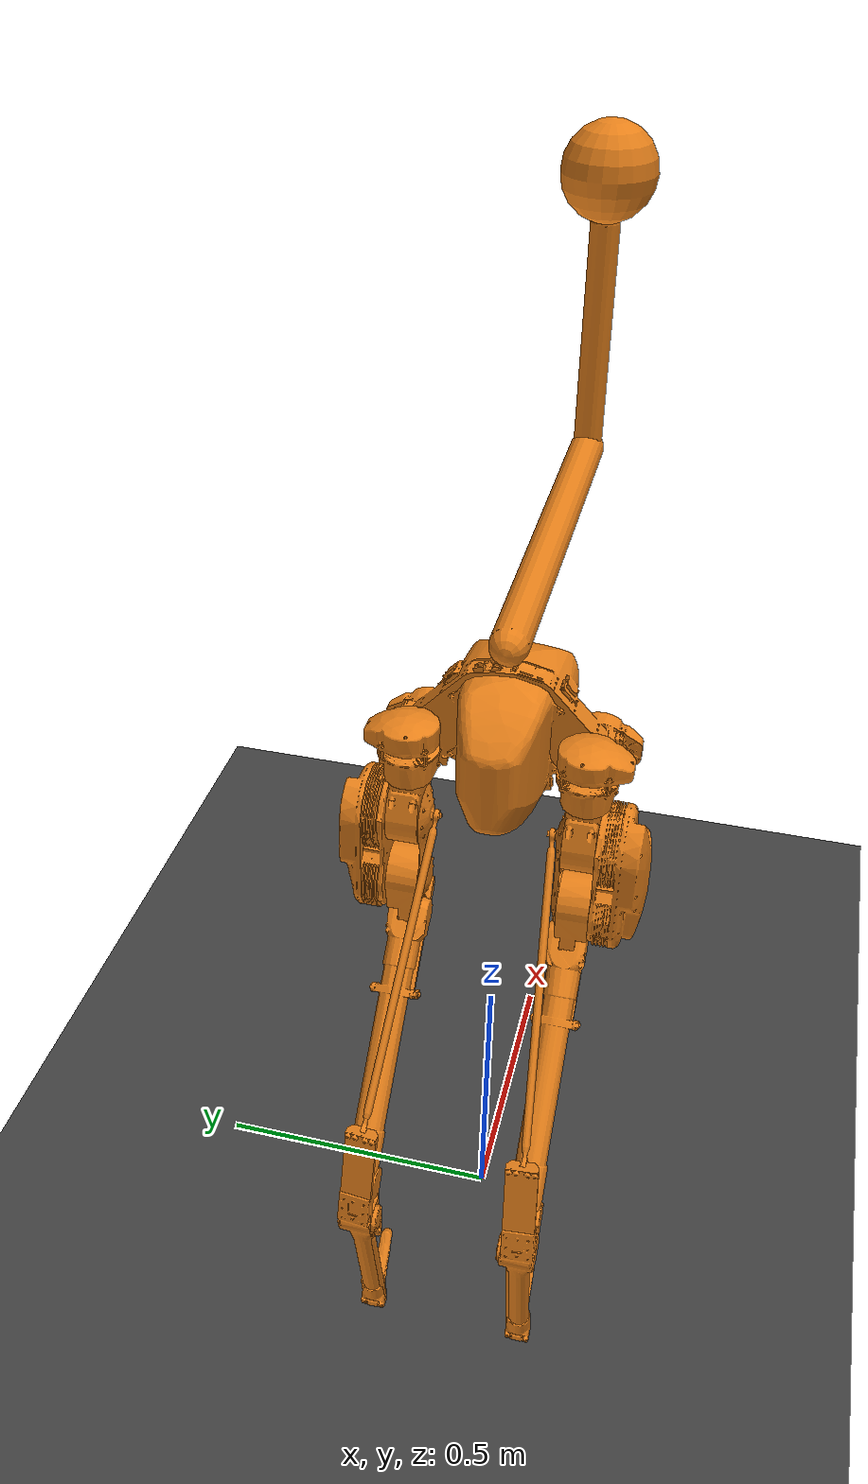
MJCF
<!-- Cassie simulation model developed by the Dynamic Robotics Laboratory -->
<mujoco model='cassie'>
  <compiler inertiafromgeom='auto' angle='degree' eulerseq='zyx' meshdir='cassie-stl-meshes'/>
  <size nuser_actuator='1' nuser_sensor='1' nuser_geom='1'/>
  <option timestep='0.0005' iterations='50' solver='PGS' gravity='0 0 -9.81'/>
  <!-- Timestep is set to 0.0005 because our controller runs at 2 kHz -->
  <!-- Larger values still have stable dynamics -->

  <visual>
    <quality shadowsize='4096'/>
    <map znear='0.05'/>
  </visual>

  <default>
    <joint limited='true'/>
    <motor ctrllimited='true'/>
    <geom contype='0' conaffinity='0' condim='1' solref='0.005 1'/>
    <equality solref='0.005 1'/>
    <default class='cassie'>
      <geom material='cassie'/>
    </default>
    <default class='collision'>
      <!-- User parameter for geoms is used to identify collision types -->
      <geom material='collision' contype='1' user='2'/>
      <default class='collision-left'>
        <geom contype='2' conaffinity='4'/>
      </default>
      <default class='collision-right'>
        <geom contype='4' conaffinity='2'/>
      </default>
    </default>
    <default class='obstacle'>
      <geom material='obstacle' condim='3' contype='8' conaffinity='15' user='1'/>
    </default>
  </default>

  <asset>
    <texture type='skybox' builtin='gradient' width='128' height='128' rgb1='0.4 0.6 0.8' rgb2='0 0 0'/>
    <texture name='plane' type='2d' builtin='checker' rgb1='0.2 0.2 0.2' rgb2='0.3 0.3 0.3' width='512' height='512'/>
    <material name='plane' reflectance='0.0' texture='plane' texrepeat='1 1' texuniform='true'/>
    <material name='cassie'    rgba='0.9 0.5 0.1 1'/>
    <material name='collision' rgba='0.1 0.5 0.9 0'/>
    <material name='obstacle'  rgba='0.2 0.6 0.2 1'/>
    <mesh name='cassie-pelvis' file='pelvis.stl'/>
    <mesh name='left-hip-roll'     file='hip-roll.stl'/>
    <mesh name='left-hip-yaw'      file='hip-yaw.stl'/>
    <mesh name='left-hip-pitch'    file='hip-pitch.stl'/>
    <mesh name='left-achilles-rod' file='achilles-rod.stl'/>
    <mesh name='left-knee'         file='knee.stl'/>
    <mesh name='left-knee-spring'  file='knee-spring.stl'/>
    <mesh name='left-shin'         file='shin.stl'/>
    <mesh name='left-tarsus'       file='tarsus.stl'/>
    <mesh name='left-heel-spring'  file='heel-spring.stl'/>
    <mesh name='left-foot-crank'   file='foot-crank.stl'/>
    <mesh name='left-plantar-rod'  file='plantar-rod.stl'/>
    <mesh name='left-foot'         file='foot.stl'/>
    <mesh name='right-hip-roll'     scale='1 -1 1' file='hip-roll.stl'/>
    <mesh name='right-hip-yaw'      scale='1 -1 1' file='hip-yaw.stl'/>
    <mesh name='right-hip-pitch'    scale='1 1 -1' file='hip-pitch.stl'/>
    <mesh name='right-achilles-rod' scale='1 1 -1' file='achilles-rod.stl'/>
    <mesh name='right-knee'         scale='1 1 -1' file='knee.stl'/>
    <mesh name='right-knee-spring'  scale='1 1 -1' file='knee-spring.stl'/>
    <mesh name='right-shin'         scale='1 1 -1' file='shin.stl'/>
    <mesh name='right-tarsus'       scale='1 1 -1' file='tarsus.stl'/>
    <mesh name='right-heel-spring'  scale='1 1 -1' file='heel-spring.stl'/>
    <mesh name='right-foot-crank'   scale='1 1 -1' file='foot-crank.stl'/>
    <mesh name='right-plantar-rod'  scale='1 1 -1' file='plantar-rod.stl'/>
    <mesh name='right-foot'         scale='1 1 -1' file='foot.stl'/>
  </asset>

  <worldbody>
    <geom name='floor' pos='0.0 0 -0.01' size='100 5 .125' type='plane' material='plane' condim='3' conaffinity='15' priority="1"/>

    <light mode='trackcom' pos='0 0 5' dir='0 0 -1'/>
    <light directional='true' pos='0 0 3' dir='0 0 -1' diffuse='0.2 0.2 0.2' specular='0 0 0'/>

    <body name='cassie-pelvis' pos='0 0 1.01' childclass='cassie'>
      <camera name='track' pos='0 -3 1' zaxis='0 -1 0.5' mode='track'/>
      <inertial pos='0.05066 0.000346 0.02841' mass='10.33' fullinertia='0.085821 0.049222 0.08626 1.276e-05 -0.00016022 -0.000414'/>
      <joint type='slide' axis='1 0 0' limited='true' range='0 0.00001'/>
      <joint type='slide' axis='0 1 0' limited='true' range='0 0.00001'/>
      <joint type='slide' axis='0 0 1' limited='true' range='1.01 1.010001' ref='1.01'/>
      <joint type='ball' limited='true'/>
      <geom type='mesh' mesh='cassie-pelvis'/>
      <geom type='sphere' size='0.15' pos='0.02 0 0.02' class='collision'/>
      <site name='imu' size='0.01' pos='0.03155 0 -0.07996'/>
      <body name='left-hip-roll' pos='0.021 0.135 0' xyaxes='0 0 -1 0 1 0'>
        <inertial pos='-0.01793 0.0001 -0.04428' mass='1.82' fullinertia='0.003431 0.003793 0.002135 -6.65e-07 -0.00084 3.99e-06'/>
        <joint name='left-hip-roll' type='hinge' range='-15 22.5' damping='1' armature='0.038125'/>
        <geom type='mesh' mesh='left-hip-roll'/>
        <body name='left-hip-yaw' pos='0 0 -0.07' xyaxes='0 0 1 0 1 0'>
          <inertial pos='0 -1e-05 -0.034277' mass='1.171' fullinertia='0.002443 0.002803 0.000842 -4e-08 2.462e-07 -2.71e-08'/>
          <joint name='left-hip-yaw' type='hinge' range='-22.5 22.5' damping='1' armature='0.038125'/>
          <geom type='mesh' mesh='left-hip-yaw'/>
          <body name='left-hip-pitch' pos='0 0 -0.09' xyaxes='0 0 -1 1 0 0'>
            <inertial pos='0.05946 5e-05 -0.03581' mass='5.52' fullinertia='0.010898 0.029714 0.030257 -0.0002669 -5.721e-05 9.17e-06'/>
            <joint name='left-hip-pitch' type='hinge' range='-50 80' damping='1' armature='0.09344'/>
            <geom type='mesh' mesh='left-hip-pitch'/>
            <geom type='capsule' size='0.08' fromto='0 0 -0.04 0.12 0 -0.0355' class='collision'/>
            <body name='left-achilles-rod' pos='0 0 0.045' xyaxes='0.7922 -0.60599 -0.072096 0.60349 0.79547 -0.054922'>
              <inertial pos='0.24719 0 0' mass='0.1567' fullinertia='3.754e-06 0.004487 0.004488 -3.74e-08 -1.61e-08 0'/>
              <joint name='left-achilles-rod' type='ball' limited='false' damping='0.01'/>
              <geom type='mesh' mesh='left-achilles-rod'/>
            </body>
            <body name='left-knee' pos='0.12 0 0.0045' xyaxes='0.70711 -0.70711 0 0.70711 0.70711 0'>
              <inertial pos='0.023 0.03207 -0.002181' mass='0.7578' fullinertia='0.001376 0.0010335 0.0021637 -0.00039744 -4.085e-05 -5.374e-05'/>
              <joint name='left-knee' type='hinge' ref='-45' range='-164 -37' damping='1' armature='0.09344'/>
              <geom type='mesh' mesh='left-knee'/>
              <body name='left-knee-spring' pos='0.06068 0.08241 0'>
                <inertial pos='0.0836 0.0034 0' mass='0.186' fullinertia='5.215e-05 0.00041205 0.0003669 6.87e-06 0 0'/>
                <geom type='mesh' mesh='left-knee-spring'/>
              </body>
              <body name='left-shin' pos='0.06068 0.04741 0'>
                <inertial pos='0.18338 0.001169 0.0002123' mass='0.577' fullinertia='0.00035939 0.014728 0.014707 -0.00020981 2.266e-05 -1.2e-07'/>
                <joint name='left-shin' type='hinge' range='-20 20' stiffness='1500' damping='0.1'/>
                <geom type='mesh' mesh='left-shin'/>
                <geom type='capsule' size='0.04' fromto='0 0 0 0.43476 0.02 0' class='collision-left'/>
                <body name='left-tarsus' pos='0.43476 0.02 0' xyaxes='0.52992 0.84805 0 -0.84805 0.52992 0'>
                  <inertial pos='0.11046 -0.03058 -0.00131' mass='0.782' fullinertia='0.00039238 0.013595 0.013674 0.00023651 -4.987e-05 -4.82e-06'/>
                  <joint name='left-tarsus' type='hinge' ref='58' range='50 170' damping='0.1'/>
                  <geom type='mesh' mesh='left-tarsus'/>
                  <geom type='capsule' size='0.04' fromto='-0.01269 -0.03059 0.00092 0.408 -0.04 0' class='collision-left'/>
                  <body name='left-heel-spring' pos='-0.01269 -0.03059 0.00092' xyaxes='-0.91211 0.40829 0.036948 -0.40992 -0.90952 -0.068841'>
                    <inertial pos='0.081 0.0022 0' mass='0.126' fullinertia='2.959e-05 0.00022231 0.0002007 7.15e-06 -6e-07 1e-07'/>
                    <joint name='left-heel-spring' type='hinge' limited='false' stiffness='1250'/>
                    <geom type='mesh' mesh='left-heel-spring'/>
                  </body>
                  <body name='left-foot-crank' pos='0.058 -0.034 0.02275'>
                    <inertial pos='0.00493 2e-05 -0.00215' mass='0.1261' fullinertia='2.6941e-05 4.9621e-05 6.3362e-05 -2.1e-09 -3.9623e-06 -1.09e-08'/>
                    <joint name='left-foot-crank' type='hinge' range='-140 -30' damping='1'/>
                    <geom type='mesh' mesh='left-foot-crank'/>
                    <body name='left-plantar-rod' pos='0.055 0 -0.00791'>
                      <inertial pos='0.17792 0 0' mass='0.1186' fullinertia='2.779e-06 0.001774 0.001775 -2.34e-08 -8.1e-09 0'/>
                      <joint name='left-plantar-rod' type='hinge' limited='false'/>
                      <geom type='mesh' mesh='left-plantar-rod'/>
                    </body>
                  </body>
                  <body name='left-foot' pos='0.408 -0.04 0'>
                    <inertial pos='0.00474 0.02748 -0.00014' mass='0.1498' fullinertia='0.00017388 0.00016793 0.00033261 0.00011814 1.36e-06 -4e-07'/>
                    <joint name='left-foot' type='hinge' range='-140 -30' damping='1' armature='0.01225'/>
                    <geom type='mesh' mesh='left-foot'/>
                    <geom type='capsule' size='0.02' fromto='-0.052821 0.092622 0 0.069746 -0.010224 0' class='collision-left'/>
                  </body>
                </body>
              </body>
            </body>
          </body>
        </body>
      </body>
      <body name='right-hip-roll' pos='0.021 -0.135 0' xyaxes='0 0 -1 0 1 0'>
        <inertial pos='-0.01793 0.0001 -0.04428' mass='1.82' fullinertia='0.003431 0.003793 0.002135 6.65e-07 -0.00084 -3.99e-06'/>
        <joint name='right-hip-roll' type='hinge' range='-22.5 15' damping='1' armature='0.038125'/>
        <geom type='mesh' mesh='right-hip-roll'/>
        <body name='right-hip-yaw' pos='0 0 -0.07' xyaxes='0 0 1 0 1 0'>
          <inertial pos='0 1e-05 -0.034277' mass='1.171' fullinertia='0.002443 0.002803 0.000842 4e-08 2.462e-07 2.71e-08'/>
          <joint name='right-hip-yaw' type='hinge' range='-22.5 22.5' damping='1' armature='0.038125'/>
          <geom type='mesh' mesh='right-hip-yaw'/>
          <body name='right-hip-pitch' pos='0 0 -0.09' xyaxes='0 0 -1 1 0 0'>
            <inertial pos='0.05946 5e-05 0.03581' mass='5.52' fullinertia='0.010898 0.029714 0.030257 -0.0002669 5.721e-05 -9.17e-06'/>
            <joint name='right-hip-pitch' type='hinge' range='-50 80' damping='1' armature='0.09344'/>
            <geom type='mesh' mesh='right-hip-pitch'/>
            <geom type='capsule' size='0.08' fromto='0 0 0.04 0.12 0 0.0355' class='collision'/>
            <body name='right-achilles-rod' pos='0 0 -0.045' xyaxes='0.7922 -0.60599 0.072096 0.60349 0.79547 0.054922'>
              <inertial pos='0.24719 0 0' mass='0.1567' fullinertia='3.754e-06 0.004487 0.004488 -3.74e-08 1.61e-08 0'/>
              <joint name='right-achilles-rod' type='ball' limited='false' damping='0.01'/>
              <geom type='mesh' mesh='right-achilles-rod'/>
            </body>
            <body name='right-knee' pos='0.12 0 -0.0045' xyaxes='0.70711 -0.70711 0 0.70711 0.70711 0'>
              <inertial pos='0.023 0.03207 0.002181' mass='0.7578' fullinertia='0.001376 0.0010335 0.0021637 -0.00039744 4.085e-05 5.374e-05'/>
              <joint name='right-knee' type='hinge' ref='-45' range='-164 -37' damping='1' armature='0.09344'/>
              <geom type='mesh' mesh='right-knee'/>
              <body name='right-knee-spring' pos='0.06068 0.08241 0'>
                <inertial pos='0.0836 0.0034 0' mass='0.186' fullinertia='5.215e-05 0.00041205 0.0003669 6.87e-06 0 0'/>
                <geom type='mesh' mesh='right-knee-spring'/>
              </body>
              <body name='right-shin' pos='0.06068 0.04741 0'>
                <inertial pos='0.18338 0.001169 -0.0002123' mass='0.577' fullinertia='0.00035939 0.014728 0.014707 -0.00020981 -2.266e-05 1.2e-07'/>
                <joint name='right-shin' type='hinge' range='-20 20' stiffness='1500' damping='0.1'/>
                <geom type='mesh' mesh='right-shin'/>
                <geom type='capsule' size='0.04' fromto='0 0 0 0.43476 0.02 0' class='collision-right'/>
                <body name='right-tarsus' pos='0.43476 0.02 0' xyaxes='0.52992 0.84805 0 -0.84805 0.52992 0'>
                  <inertial pos='0.11046 -0.03058 0.00131' mass='0.782' fullinertia='0.00039238 0.013595 0.013674 0.00023651 4.987e-05 4.82e-06'/>
                  <joint name='right-tarsus' type='hinge' ref='58' range='50 170' damping='0.1'/>
                  <geom type='mesh' mesh='right-tarsus'/>
                  <geom type='capsule' size='0.04' fromto='-0.01269 -0.03059 -0.00092 0.408 -0.04 0' class='collision-right'/>
                  <body name='right-heel-spring' pos='-0.01269 -0.03059 -0.00092' xyaxes='-0.91211 0.40829 -0.036948 -0.40992 -0.90952 0.068841'>
                    <inertial pos='0.081 0.0022 0' mass='0.126' fullinertia='2.959e-05 0.00022231 0.0002007 7.15e-06 6e-07 -1e-07'/>
                    <joint name='right-heel-spring' type='hinge' limited='false' stiffness='1250'/>
                    <geom type='mesh' mesh='right-heel-spring'/>
                  </body>
                  <body name='right-foot-crank' pos='0.058 -0.034 -0.02275'>
                    <inertial pos='0.00493 2e-05 0.00215' mass='0.1261' fullinertia='2.6941e-05 4.9621e-05 6.3362e-05 -2.1e-09 3.9623e-06 1.09e-08'/>
                    <joint name='right-foot-crank' type='hinge' range='-140 -30' damping='1'/>
                    <geom type='mesh' mesh='right-foot-crank'/>
                    <body name='right-plantar-rod' pos='0.055 0 0.00791'>
                      <inertial pos='0.17792 0 0' mass='0.1186' fullinertia='2.779e-06 0.001774 0.001775 -2.34e-08 8.1e-09 0'/>
                      <joint name='right-plantar-rod' type='hinge' limited='false'/>
                      <geom type='mesh' mesh='right-plantar-rod'/>
                    </body>
                  </body>
                  <body name='right-foot' pos='0.408 -0.04 0'>
                    <inertial pos='0.00474 0.02748 0.00014' mass='0.1498' fullinertia='0.00017388 0.00016793 0.00033261 0.00011814 -1.36e-06 4e-07'/>
                    <joint name='right-foot' type='hinge' range='-140 -30' damping='1' armature='0.01225'/>
                    <geom type='mesh' mesh='right-foot'/>
                    <geom type='capsule' size='0.02' fromto='-0.052821 0.092622 0 0.069746 -0.010224 0' class='collision-right'/>
                  </body>
                </body>
              </body>
            </body>
          </body>
        </body>
      </body>
      <body name='yoke' pos='0.35 0 0.2' xyaxes='0 0 1 0 1 0'>
        <geom type='capsule' size='0.03 .35'/>
        <body name='slosh_string' pos='0.195 0 -0.35' xyaxes='0 0 1 0 1 0'>
          <joint type='hinge' axis='0 1 0' limited='false' pos='0.0 0.0 0.2' damping='10'/>
          <geom type='capsule' size='0.025 .2'/>
          <body name='slosh_mass' pos='0 0 -0.28'>
            <geom type='sphere' mass='5' size='.08'/>
          </body>
        </body>
      </body>
    </body>

    <!-- Add any other moving bodies after the Cassie definition -->

  </worldbody>

  <equality>
    <connect body1='left-plantar-rod'  body2='left-foot'        anchor='0.35012 0 0'/>
    <connect body1='left-achilles-rod' body2='left-heel-spring' anchor='0.5012 0 0'/>
    <connect body1='right-plantar-rod'  body2='right-foot'        anchor='0.35012 0 0'/>
    <connect body1='right-achilles-rod' body2='right-heel-spring' anchor='0.5012 0 0'/>
  </equality>

  <actuator>
    <!-- User parameter is the maximum no-load motor RPM -->
    <motor name='left-hip-roll'  joint='left-hip-roll'  gear='25' ctrllimited='true' ctrlrange='-4.5 4.5'   user='2900'/>
    <motor name='left-hip-yaw'   joint='left-hip-yaw'   gear='25' ctrllimited='true' ctrlrange='-4.5 4.5'   user='2900'/>
    <motor name='left-hip-pitch' joint='left-hip-pitch' gear='16' ctrllimited='true' ctrlrange='-12.2 12.2' user='1300'/>
    <motor name='left-knee'      joint='left-knee'      gear='16' ctrllimited='true' ctrlrange='-12.2 12.2' user='1300'/>
    <motor name='left-foot'      joint='left-foot'      gear='50' ctrllimited='true' ctrlrange='-0.9 0.9'   user='5500'/>
    <motor name='right-hip-roll'  joint='right-hip-roll'  gear='25' ctrllimited='true' ctrlrange='-4.5 4.5'   user='2900'/>
    <motor name='right-hip-yaw'   joint='right-hip-yaw'   gear='25' ctrllimited='true' ctrlrange='-4.5 4.5'   user='2900'/>
    <motor name='right-hip-pitch' joint='right-hip-pitch' gear='16' ctrllimited='true' ctrlrange='-12.2 12.2' user='1300'/>
    <motor name='right-knee'      joint='right-knee'      gear='16' ctrllimited='true' ctrlrange='-12.2 12.2' user='1300'/>
    <motor name='right-foot'      joint='right-foot'      gear='50' ctrllimited='true' ctrlrange='-0.9 0.9'   user='5500'/>
  </actuator>

  <sensor>
    <!-- User parameter is the number of absolute encoder bits -->
    <actuatorpos name='left-hip-roll-input'  actuator='left-hip-roll'  user='13'/>
    <actuatorpos name='left-hip-yaw-input'   actuator='left-hip-yaw'   user='13'/>
    <actuatorpos name='left-hip-pitch-input' actuator='left-hip-pitch' user='13'/>
    <actuatorpos name='left-knee-input'      actuator='left-knee'      user='13'/>
    <actuatorpos name='left-foot-input'      actuator='left-foot'      user='18'/>
    <jointpos    name='left-shin-output'     joint='left-shin'         user='18' noise='2e-4'/>
    <jointpos    name='left-tarsus-output'   joint='left-tarsus'       user='18' noise='2e-4'/>
    <jointpos    name='left-foot-output'     joint='left-foot'         user='13'/>
    <actuatorpos name='right-hip-roll-input'  actuator='right-hip-roll'   user='13'/>
    <actuatorpos name='right-hip-yaw-input'   actuator='right-hip-yaw'    user='13'/>
    <actuatorpos name='right-hip-pitch-input' actuator='right-hip-pitch'  user='13'/>
    <actuatorpos name='right-knee-input'      actuator='right-knee'       user='13'/>
    <actuatorpos name='right-foot-input'      actuator='right-foot'       user='18'/>
    <jointpos    name='right-shin-output'     joint='right-shin'          user='18' noise='2e-4'/>
    <jointpos    name='right-tarsus-output'   joint='right-tarsus'        user='18' noise='2e-4'/>
    <jointpos    name='right-foot-output'     joint='right-foot'          user='13'/>

    <framequat     name='pelvis-orientation' objtype='site' objname='imu'/>
    <gyro          name='pelvis-angular-velocity'    site='imu' noise='5e-4' cutoff='34.9'/>
    <accelerometer name='pelvis-linear-acceleration' site='imu' noise='1e-2' cutoff='157'/>
    <magnetometer  name='pelvis-magnetometer'        site='imu'/>
  </sensor>

</mujoco>
